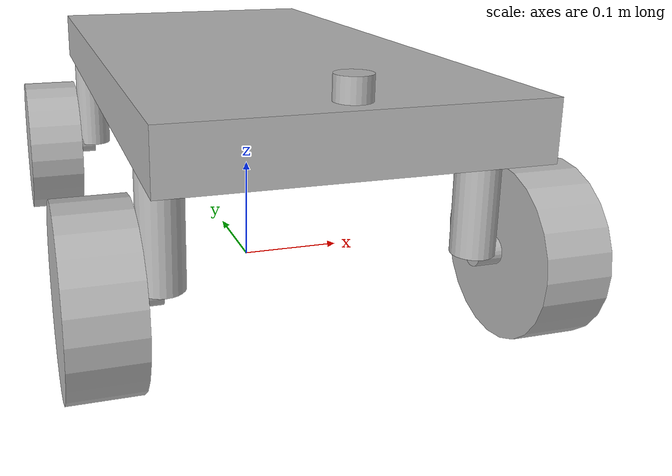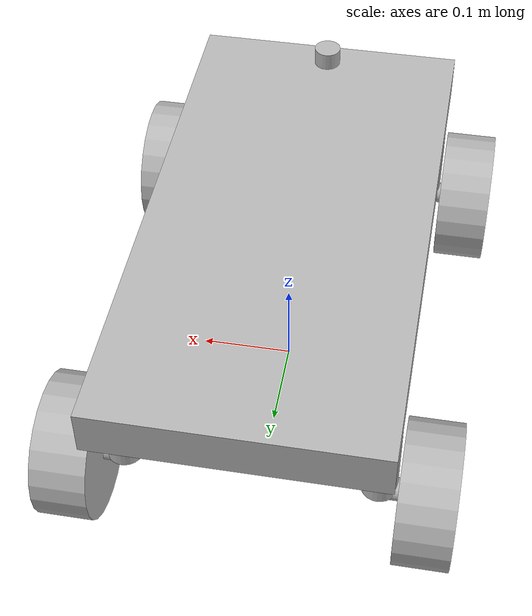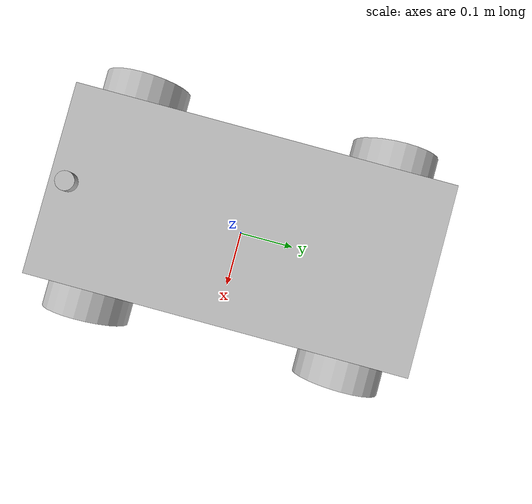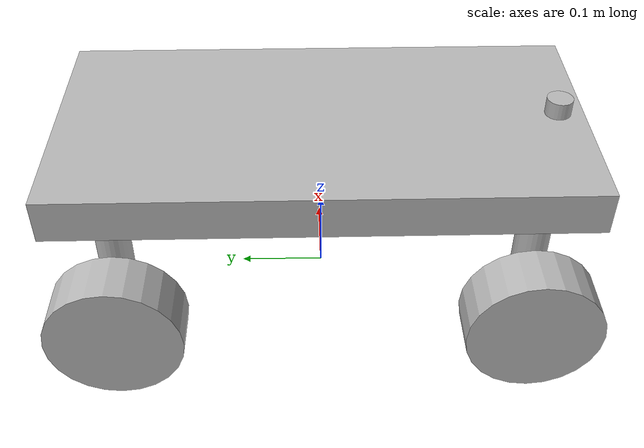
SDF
<?xml version="1.0" ?>
<sdf version="1.6">
	<model name="robot">
		<link name="body_link">
			<pose>0 0 0.19649999999999998 0 0 0</pose>
			<inertial>
				<inertia>
					<ixx>0.30208333</ixx>
					<iyy>0.07708333</iyy>
					<izz>0.37500000</izz>
				</inertia>
				<mass>10.00000000</mass>
			</inertial>
			<visual name="body_link_vis">
				<geometry>
					<box>
						<size>0.3 0.6 0.049999999999999996</size>
					</box>
				</geometry>
			</visual>
			<collision name="body_link_col">
				<geometry>
					<box>
						<size>0.3 0.6 0.049999999999999996</size>
					</box>
				</geometry>
			</collision>
			<sensor name="body_link_sensor" type="contact">
				<contact>
					<collision>body_link_col</collision>
				</contact>
				<always_on>1</always_on>
				<update_rate>30</update_rate>
				<visualize>true</visualize>
				<plugin filename="libcontact_plugin.so" name="my_plugin"/>
			</sensor>
		</link>

		<link name="camera_carrier">
			<pose>0 -0.27 0.22149999999999997 0 0 0</pose>
			<inertial>
				<inertia>
					<ixx>0.00024375</ixx>
					<iyy>0.00024375</iyy>
					<izz>0.00045000</izz>
				</inertia>
				<mass>1.00000000</mass>
			</inertial>
			<visual name="camera_carrier_vis">
				<geometry>
					<cylinder>
						<radius>0.015</radius>
						<length>0.04</length>
					</cylinder>
				</geometry>
			</visual>

			<collision name="camera_carrier_col">
				<geometry>
					<cylinder>
						<radius>0.03</radius>
						<length>0.015</length>
					</cylinder>
				</geometry>
			</collision>

			<sensor name="camera_sensor" type="depth">
				<camera>
					<horizontal_fov>1.8</horizontal_fov>
					<image>
						<width>1280</width>
						<height>960</height>
						<format>R8G8B8</format>
					</image>
					<clip>
						<near>0.1</near>
						<far>100</far>
					</clip>
				</camera>
				<plugin filename="libgazebo_ros_openni_kinect.so" name="multirotor_rgbd_plugin">
					<updateRate>20.0</updateRate>
					<cameraName>rgbd_camera</cameraName>
					<frameName>rgbd_camera_link</frameName>
					<imageTopicName>rgb/image_raw</imageTopicName>
					<cameraInfoTopicName>rgb/camera_info</cameraInfoTopicName>
					<pointCloudTopicName>depth/points</pointCloudTopicName>
					<depthImageTopicName>depth/image_raw</depthImageTopicName>
					<depthImageCameraInfoTopicName>depth/camera_info</depthImageCameraInfoTopicName>
					<pointCloudCutoff>0.4</pointCloudCutoff>
					<pointCloudCutoffMax>5.0</pointCloudCutoffMax>
				</plugin>
				<visualize>True</visualize>
				<always_on>True</always_on>
				<update_rate>30</update_rate>
			</sensor>
		</link>

		<joint name="bodyLink_camera_carrier" type="fixed">
			<pose>0 0 0 0 0 0</pose>
			<child>camera_carrier</child>
			<parent>body_link</parent>
		</joint>

		<link name="susp_1">
			<pose>0.13125 -0.22499999999999998 0.12375 0 0 0</pose>
			<inertial>
				<inertia>
					<ixx>0.00088008</ixx>
					<iyy>0.00088008</iyy>
					<izz>0.00017578</izz>
				</inertia>
				<mass>1.00000000</mass>
			</inertial>
			<visual name="susp_1_vis">
				<geometry>
					<cylinder>
						<radius>0.01875</radius>
						<length>0.0975</length>
					</cylinder>
				</geometry>
			</visual>
			<collision name="susp_1_col">
				<geometry>
					<cylinder>
						<radius>0.01875</radius>
						<length>0.0975</length>
					</cylinder>
				</geometry>
			</collision>
		</link>
		<link name="wheel_1">
			<pose>0.18125000000000002 -0.22499999999999998 0.075 0 1.5707963267948966 0</pose>
			<inertial>
				<inertia>
					<ixx>0.00281250</ixx>
					<iyy>0.00168362</iyy>
					<izz>0.00168362</izz>
				</inertia>
				<mass>1.00000000</mass>
			</inertial>
			<visual name="wheel_1_vis">
				<geometry>
					<cylinder>
						<radius>0.075</radius>
						<length>0.05769230769230769</length>
					</cylinder>
				</geometry>
			</visual>
			<collision name="wheel_1_col">
				<geometry>
					<cylinder>
						<radius>0.075</radius>
						<length>0.05769230769230769</length>
					</cylinder>
				</geometry>
			</collision>
		</link>
		<joint name="susp1_body" type="fixed">
			<pose>0 0 0.04875 0 0 0</pose>
			<child>susp_1</child>
			<parent>body_link</parent>
		</joint>
		<joint name="susp_axel_1" type="fixed">
			<pose>0 0 -0.025 0 0 0</pose>
			<child>axel_1</child>
			<parent>susp_1</parent>
		</joint>
		<link name="susp_2">
			<pose>0.13125 0.22499999999999998 0.12375 0 0 0</pose>
			<inertial>
				<inertia>
					<ixx>0.00088008</ixx>
					<iyy>0.00088008</iyy>
					<izz>0.00017578</izz>
				</inertia>
				<mass>1.00000000</mass>
			</inertial>
			<visual name="susp_2_vis">
				<geometry>
					<cylinder>
						<radius>0.01875</radius>
						<length>0.0975</length>
					</cylinder>
				</geometry>
			</visual>
			<collision name="susp_2_col">
				<geometry>
					<cylinder>
						<radius>0.01875</radius>
						<length>0.0975</length>
					</cylinder>
				</geometry>
			</collision>
		</link>
		<link name="wheel_2">
			<pose>0.18125000000000002 0.22499999999999998 0.075 0 1.5707963267948966 0</pose>
			<inertial>
				<inertia>
					<ixx>0.00281250</ixx>
					<iyy>0.00168362</iyy>
					<izz>0.00168362</izz>
				</inertia>
				<mass>1.00000000</mass>
			</inertial>
			<visual name="wheel_2_vis">
				<geometry>
					<cylinder>
						<radius>0.075</radius>
						<length>0.05769230769230769</length>
					</cylinder>
				</geometry>
			</visual>
			<collision name="wheel_2_col">
				<geometry>
					<cylinder>
						<radius>0.075</radius>
						<length>0.05769230769230769</length>
					</cylinder>
				</geometry>
			</collision>
		</link>
		<joint name="susp2_body" type="fixed">
			<pose>0 0 0.04875 0 0 0</pose>
			<child>susp_2</child>
			<parent>body_link</parent>
		</joint>
		<joint name="susp_axel_2" type="fixed">
			<pose>0 0 -0.025 0 0 0</pose>
			<child>axel_2</child>
			<parent>susp_2</parent>
		</joint>
		<link name="susp_4">
			<pose>-0.13125 -0.22499999999999998 0.12375 0 0 0</pose>
			<inertial>
				<inertia>
					<ixx>0.00088008</ixx>
					<iyy>0.00088008</iyy>
					<izz>0.00017578</izz>
				</inertia>
				<mass>1.00000000</mass>
			</inertial>
			<visual name="susp_4_vis">
				<geometry>
					<cylinder>
						<radius>0.01875</radius>
						<length>0.0975</length>
					</cylinder>
				</geometry>
			</visual>
			<collision name="susp_4_col">
				<geometry>
					<cylinder>
						<radius>0.01875</radius>
						<length>0.0975</length>
					</cylinder>
				</geometry>
			</collision>
		</link>
		<link name="wheel_4">
			<pose>-0.18125000000000002 -0.22499999999999998 0.075 0 1.5707963267948966 0</pose>
			<inertial>
				<inertia>
					<ixx>0.00281250</ixx>
					<iyy>0.00168362</iyy>
					<izz>0.00168362</izz>
				</inertia>
				<mass>1.00000000</mass>
			</inertial>
			<visual name="wheel_4_vis">
				<geometry>
					<cylinder>
						<radius>0.075</radius>
						<length>0.05769230769230769</length>
					</cylinder>
				</geometry>
			</visual>
			<collision name="wheel_4_col">
				<geometry>
					<cylinder>
						<radius>0.075</radius>
						<length>0.05769230769230769</length>
					</cylinder>
				</geometry>
			</collision>
		</link>
		<joint name="susp4_body" type="fixed">
			<pose>0 0 0.04875 0 0 0</pose>
			<child>susp_4</child>
			<parent>body_link</parent>
		</joint>
		<joint name="susp_axel_4" type="fixed">
			<pose>0 0 0.025 0 0 0</pose>
			<child>axel_4</child>
			<parent>susp_4</parent>
		</joint>
		<link name="axel_1">
			<pose>0.15625 -0.22499999999999998 0.075 0 1.5707963267948966 0</pose>
			<inertial>
				<inertia>
					<ixx>0.00003600</ixx>
					<iyy>0.00012217</iyy>
					<izz>0.00012217</izz>
				</inertia>
				<mass>0.50000000</mass>
			</inertial>
			<visual name="axel_1_vis">
				<geometry>
					<cylinder>
						<radius>0.012</radius>
						<length>0.05</length>
					</cylinder>
				</geometry>
			</visual>
			<collision name="axel_1_col">
				<geometry>
					<cylinder>
						<radius>0.012</radius>
						<length>0.05</length>
					</cylinder>
				</geometry>
			</collision>
		</link>
		<joint name="axel_wheel_1" type="revolute">
			<pose>0 0 -0.028846153846153844 0 -1.5707963267948966 0</pose>
			<child>wheel_1</child>
			<parent>axel_1</parent>
			<axis>
				<xyz>0 0 1</xyz>
				<dynamics>
					<friction>0.05</friction>
					<damping>0.03</damping>
				</dynamics>
			</axis>
		</joint>
		<link name="axel_2">
			<pose>0.15625 0.22499999999999998 0.075 0 1.5707963267948966 0</pose>
			<inertial>
				<inertia>
					<ixx>0.00003600</ixx>
					<iyy>0.00012217</iyy>
					<izz>0.00012217</izz>
				</inertia>
				<mass>0.50000000</mass>
			</inertial>
			<visual name="axel_2_vis">
				<geometry>
					<cylinder>
						<radius>0.012</radius>
						<length>0.05</length>
					</cylinder>
				</geometry>
			</visual>
			<collision name="axel_2_col">
				<geometry>
					<cylinder>
						<radius>0.012</radius>
						<length>0.05</length>
					</cylinder>
				</geometry>
			</collision>
		</link>
		<joint name="axel_wheel_2" type="revolute">
			<pose>0 0 -0.028846153846153844 0 -1.5707963267948966 0</pose>
			<child>wheel_2</child>
			<parent>axel_2</parent>
			<axis>
				<xyz>1 0 0</xyz>
				<dynamics>
					<friction>0.05</friction>
					<damping>0.03</damping>
				</dynamics>
			</axis>
		</joint>
		<link name="axel_3">
			<pose>-0.15625 0.22499999999999998 0.075 0 1.5707963267948966 0</pose>
			<inertial>
				<inertia>
					<ixx>0.00003600</ixx>
					<iyy>0.00012217</iyy>
					<izz>0.00012217</izz>
				</inertia>
				<mass>0.50000000</mass>
			</inertial>
			<visual name="axel_3_vis">
				<geometry>
					<cylinder>
						<radius>0.012</radius>
						<length>0.05</length>
					</cylinder>
				</geometry>
			</visual>
			<collision name="axel_3_col">
				<geometry>
					<cylinder>
						<radius>0.012</radius>
						<length>0.05</length>
					</cylinder>
				</geometry>
			</collision>
		</link>
		<joint name="axel_wheel_3" type="revolute">
			<pose>0 0 0.028846153846153844 0 -1.5707963267948966 0</pose>
			<child>wheel_3</child>
			<parent>axel_3</parent>
			<axis>
				<xyz>1 0 0</xyz>
				<dynamics>
					<friction>0.05</friction>
					<damping>0.03</damping>
				</dynamics>
			</axis>
		</joint>
		<link name="axel_4">
			<pose>-0.15625 -0.22499999999999998 0.075 0 1.5707963267948966 0</pose>
			<inertial>
				<inertia>
					<ixx>0.00003600</ixx>
					<iyy>0.00012217</iyy>
					<izz>0.00012217</izz>
				</inertia>
				<mass>0.50000000</mass>
			</inertial>
			<visual name="axel_4_vis">
				<geometry>
					<cylinder>
						<radius>0.012</radius>
						<length>0.05</length>
					</cylinder>
				</geometry>
			</visual>
			<collision name="axel_4_col">
				<geometry>
					<cylinder>
						<radius>0.012</radius>
						<length>0.05</length>
					</cylinder>
				</geometry>
			</collision>
		</link>
		<joint name="axel_wheel_4" type="revolute">
			<pose>0 0 0.028846153846153844 0 -1.5707963267948966 0</pose>
			<child>wheel_4</child>
			<parent>axel_4</parent>
			<axis>
				<xyz>0 0 1</xyz>
				<dynamics>
					<friction>0.05</friction>
					<damping>0.03</damping>
				</dynamics>
			</axis>
		</joint>
		<link name="susp_3">
			<pose>-0.13125 0.22499999999999998 0.12375 0 0 0</pose>
			<inertial>
				<inertia>
					<ixx>0.00088008</ixx>
					<iyy>0.00088008</iyy>
					<izz>0.00017578</izz>
				</inertia>
				<mass>1.00000000</mass>
			</inertial>
			<visual name="susp_3_vis">
				<geometry>
					<cylinder>
						<radius>0.01875</radius>
						<length>0.0975</length>
					</cylinder>
				</geometry>
			</visual>
			<collision name="susp_3_col">
				<geometry>
					<cylinder>
						<radius>0.01875</radius>
						<length>0.0975</length>
					</cylinder>
				</geometry>
			</collision>
		</link>
		<link name="wheel_3">
			<pose>-0.18125000000000002 0.22499999999999998 0.075 0 1.5707963267948966 0</pose>
			<inertial>
				<inertia>
					<ixx>0.00281250</ixx>
					<iyy>0.00168362</iyy>
					<izz>0.00168362</izz>
				</inertia>
				<mass>1.00000000</mass>
			</inertial>
			<visual name="wheel_3_vis">
				<geometry>
					<cylinder>
						<radius>0.075</radius>
						<length>0.05769230769230769</length>
					</cylinder>
				</geometry>
			</visual>
			<collision name="wheel_3_col">
				<geometry>
					<cylinder>
						<radius>0.075</radius>
						<length>0.05769230769230769</length>
					</cylinder>
				</geometry>
			</collision>
		</link>
		<joint name="susp3_body" type="fixed">
			<pose>0 0 0.04875 0 0 0</pose>
			<child>susp_3</child>
			<parent>body_link</parent>
		</joint>
		<joint name="susp_axel_3" type="fixed">
			<pose>0 0 0.025 0 0 0</pose>
			<child>axel_3</child>
			<parent>susp_3</parent>
		</joint>

		<plugin name="ackerman_control" filename="libackerman_plugin.so">
        <L>0.44999999999999996</L>
        <T>0.36250000000000004</T>
        <right_front_wheel_joint>axel_wheel_4</right_front_wheel_joint>
        <left_front_wheel_joint>axel_wheel_1</left_front_wheel_joint>
        <right_rear_wheel_joint>axel_wheel_3</right_rear_wheel_joint>
        <left_rear_wheel_joint>axel_wheel_2</left_rear_wheel_joint>
      </plugin>

	</model>
</sdf>
